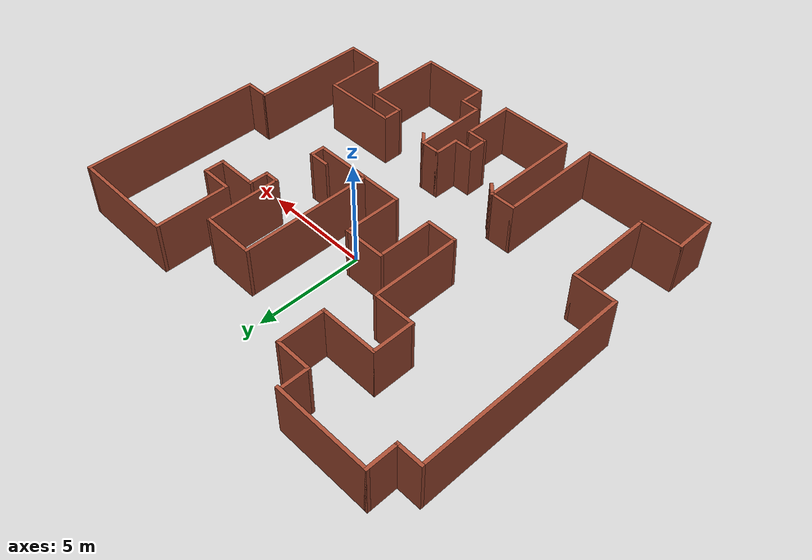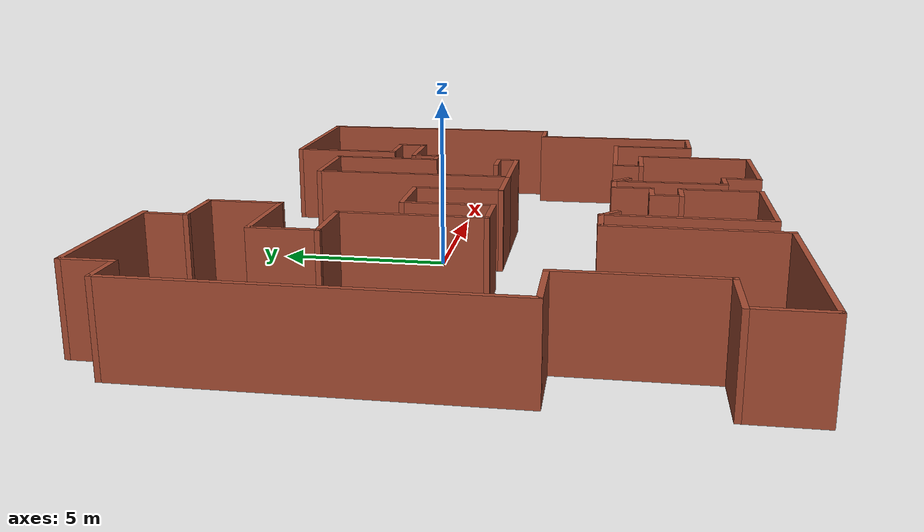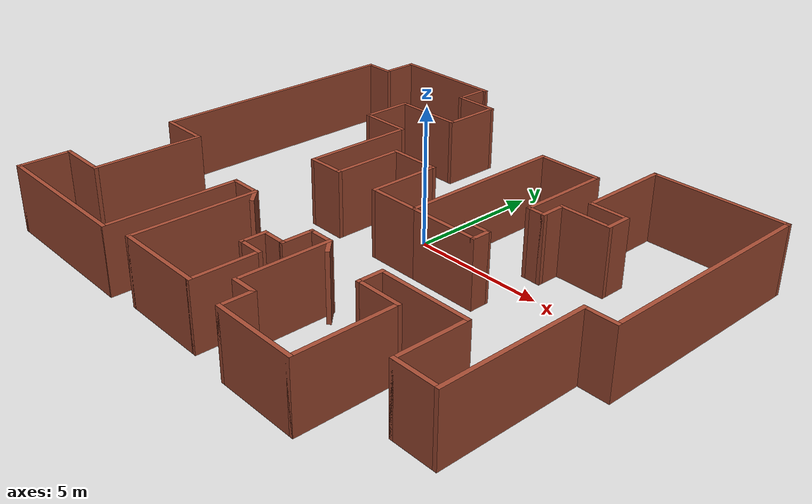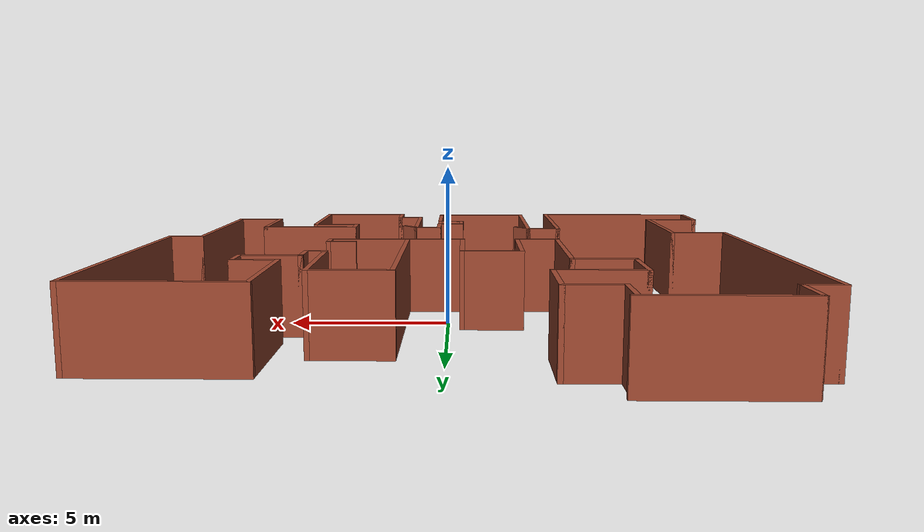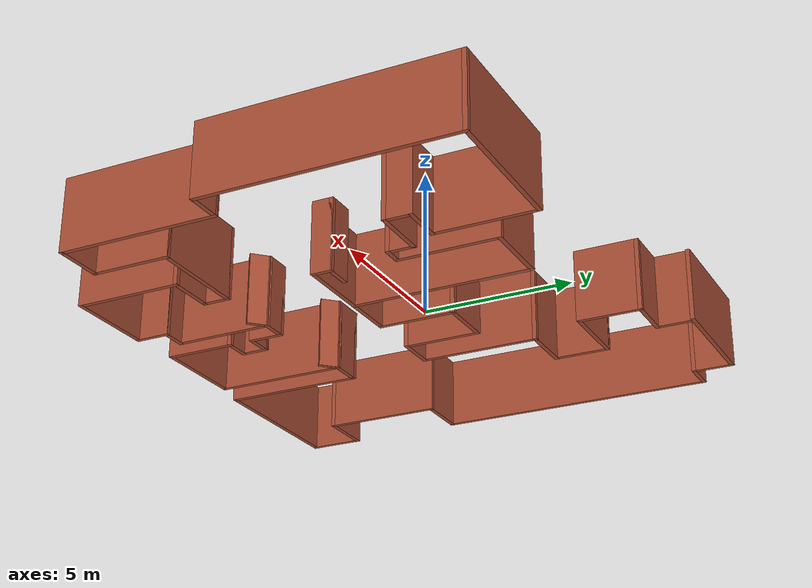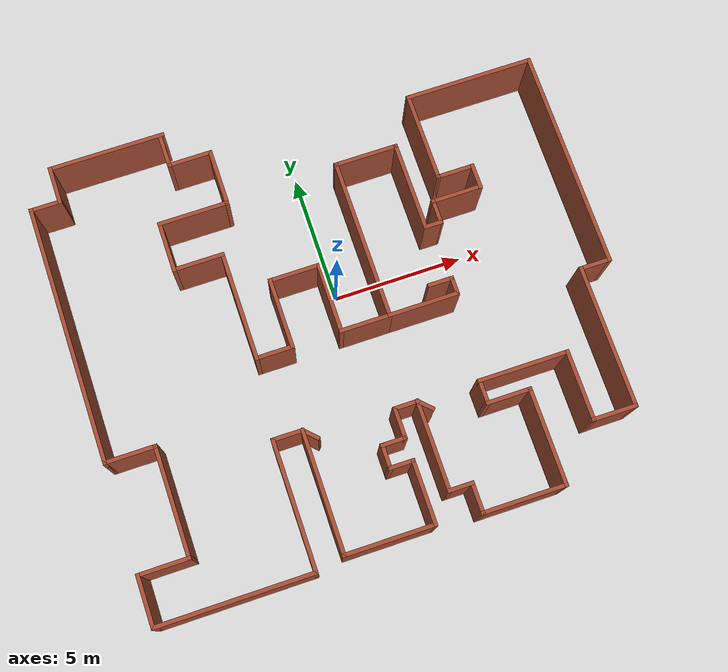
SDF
<?xml version='1.0'?>
<sdf version='1.6'>
  <model name='map_104'>
    <pose frame=''>-0.065373 -1.10854 0 0 -0 0</pose>
    <link name='Wall_14'>
      <collision name='Wall_14_Collision'>
        <geometry>
          <box>
            <size>1.5 0.15 2.5</size>
          </box>
        </geometry>
        <pose frame=''>0 0 1.25 0 -0 0</pose>
      </collision>
      <visual name='Wall_14_Visual'>
        <pose frame=''>0 0 1.25 0 -0 0</pose>
        <geometry>
          <box>
            <size>1.5 0.15 2.5</size>
          </box>
        </geometry>
        <material>
          <script>
            <uri>file://media/materials/scripts/gazebo.material</uri>
            <name>Gazebo/Bricks</name>
          </script>
          <ambient>1 1 1 1</ambient>
        </material>
        <meta>
          <layer>0</layer>
        </meta>
      </visual>
      <pose frame=''>-8.675 7.9 0 0 -0 -1.5708</pose>
    </link>
    <link name='Wall_15'>
      <collision name='Wall_15_Collision'>
        <geometry>
          <box>
            <size>1.25 0.15 2.5</size>
          </box>
        </geometry>
        <pose frame=''>0 0 1.25 0 -0 0</pose>
      </collision>
      <visual name='Wall_15_Visual'>
        <pose frame=''>0 0 1.25 0 -0 0</pose>
        <geometry>
          <box>
            <size>1.25 0.15 2.5</size>
          </box>
        </geometry>
        <material>
          <script>
            <uri>file://media/materials/scripts/gazebo.material</uri>
            <name>Gazebo/Bricks</name>
          </script>
          <ambient>1 1 1 1</ambient>
        </material>
        <meta>
          <layer>0</layer>
        </meta>
      </visual>
      <pose frame=''>-9.225 7.225 0 0 -0 3.14159</pose>
    </link>
    <link name='Wall_17'>
      <collision name='Wall_17_Collision'>
        <geometry>
          <box>
            <size>10 0.15 2.5</size>
          </box>
        </geometry>
        <pose frame=''>0 0 1.25 0 -0 0</pose>
      </collision>
      <visual name='Wall_17_Visual'>
        <pose frame=''>0 0 1.25 0 -0 0</pose>
        <geometry>
          <box>
            <size>10 0.15 2.5</size>
          </box>
        </geometry>
        <material>
          <script>
            <uri>file://media/materials/scripts/gazebo.material</uri>
            <name>Gazebo/Bricks</name>
          </script>
          <ambient>1 1 1 1</ambient>
        </material>
        <meta>
          <layer>0</layer>
        </meta>
      </visual>
      <pose frame=''>-9.775 2.3 0 0 -0 -1.5708</pose>
    </link>
    <link name='Wall_18'>
      <collision name='Wall_18_Collision'>
        <geometry>
          <box>
            <size>2 0.15 2.5</size>
          </box>
        </geometry>
        <pose frame=''>0 0 1.25 0 -0 0</pose>
      </collision>
      <visual name='Wall_18_Visual'>
        <pose frame=''>0 0 1.25 0 -0 0</pose>
        <geometry>
          <box>
            <size>2 0.15 2.5</size>
          </box>
        </geometry>
        <material>
          <script>
            <uri>file://media/materials/scripts/gazebo.material</uri>
            <name>Gazebo/Bricks</name>
          </script>
          <ambient>1 1 1 1</ambient>
        </material>
        <meta>
          <layer>0</layer>
        </meta>
      </visual>
      <pose frame=''>-8.85 -2.625 0 0 -0 0</pose>
    </link>
    <link name='Wall_19'>
      <collision name='Wall_19_Collision'>
        <geometry>
          <box>
            <size>4.25 0.15 2.5</size>
          </box>
        </geometry>
        <pose frame=''>0 0 1.25 0 -0 0</pose>
      </collision>
      <visual name='Wall_19_Visual'>
        <pose frame=''>0 0 1.25 0 -0 0</pose>
        <geometry>
          <box>
            <size>4.25 0.15 2.5</size>
          </box>
        </geometry>
        <material>
          <script>
            <uri>file://media/materials/scripts/gazebo.material</uri>
            <name>Gazebo/Bricks</name>
          </script>
          <ambient>1 1 1 1</ambient>
        </material>
        <meta>
          <layer>0</layer>
        </meta>
      </visual>
      <pose frame=''>-7.925 -4.675 0 0 -0 -1.5708</pose>
    </link>
    <link name='Wall_20'>
      <collision name='Wall_20_Collision'>
        <geometry>
          <box>
            <size>2 0.15 2.5</size>
          </box>
        </geometry>
        <pose frame=''>0 0 1.25 0 -0 0</pose>
      </collision>
      <visual name='Wall_20_Visual'>
        <pose frame=''>0 0 1.25 0 -0 0</pose>
        <geometry>
          <box>
            <size>2 0.15 2.5</size>
          </box>
        </geometry>
        <material>
          <script>
            <uri>file://media/materials/scripts/gazebo.material</uri>
            <name>Gazebo/Bricks</name>
          </script>
          <ambient>1 1 1 1</ambient>
        </material>
        <meta>
          <layer>0</layer>
        </meta>
      </visual>
      <pose frame=''>-8.85 -6.725 0 0 -0 3.14159</pose>
    </link>
    <link name='Wall_21'>
      <collision name='Wall_21_Collision'>
        <geometry>
          <box>
            <size>2 0.15 2.5</size>
          </box>
        </geometry>
        <pose frame=''>0 0 1.25 0 -0 0</pose>
      </collision>
      <visual name='Wall_21_Visual'>
        <pose frame=''>0 0 1.25 0 -0 0</pose>
        <geometry>
          <box>
            <size>2 0.15 2.5</size>
          </box>
        </geometry>
        <material>
          <script>
            <uri>file://media/materials/scripts/gazebo.material</uri>
            <name>Gazebo/Bricks</name>
          </script>
          <ambient>1 1 1 1</ambient>
        </material>
        <meta>
          <layer>0</layer>
        </meta>
      </visual>
      <pose frame=''>-9.775 -7.65 0 0 -0 -1.5708</pose>
    </link>
    <link name='Wall_22'>
      <collision name='Wall_22_Collision'>
        <geometry>
          <box>
            <size>6 0.15 2.5</size>
          </box>
        </geometry>
        <pose frame=''>0 0 1.25 0 -0 0</pose>
      </collision>
      <visual name='Wall_22_Visual'>
        <pose frame=''>0 0 1.25 0 -0 0</pose>
        <geometry>
          <box>
            <size>6 0.15 2.5</size>
          </box>
        </geometry>
        <material>
          <script>
            <uri>file://media/materials/scripts/gazebo.material</uri>
            <name>Gazebo/Bricks</name>
          </script>
          <ambient>1 1 1 1</ambient>
        </material>
        <meta>
          <layer>0</layer>
        </meta>
      </visual>
      <pose frame=''>-6.85 -8.575 0 0 -0 0</pose>
    </link>
    <link name='Wall_23'>
      <collision name='Wall_23_Collision'>
        <geometry>
          <box>
            <size>5 0.15 2.5</size>
          </box>
        </geometry>
        <pose frame=''>0 0 1.25 0 -0 0</pose>
      </collision>
      <visual name='Wall_23_Visual'>
        <pose frame=''>0 0 1.25 0 -0 0</pose>
        <geometry>
          <box>
            <size>5 0.15 2.5</size>
          </box>
        </geometry>
        <material>
          <script>
            <uri>file://media/materials/scripts/gazebo.material</uri>
            <name>Gazebo/Bricks</name>
          </script>
          <ambient>1 1 1 1</ambient>
        </material>
        <meta>
          <layer>0</layer>
        </meta>
      </visual>
      <pose frame=''>-3.925 -6.15 0 0 -0 1.5708</pose>
    </link>
    <link name='Wall_24'>
      <collision name='Wall_24_Collision'>
        <geometry>
          <box>
            <size>1.25 0.15 2.5</size>
          </box>
        </geometry>
        <pose frame=''>0 0 1.25 0 -0 0</pose>
      </collision>
      <visual name='Wall_24_Visual'>
        <pose frame=''>0 0 1.25 0 -0 0</pose>
        <geometry>
          <box>
            <size>1.25 0.15 2.5</size>
          </box>
        </geometry>
        <material>
          <script>
            <uri>file://media/materials/scripts/gazebo.material</uri>
            <name>Gazebo/Bricks</name>
          </script>
          <ambient>1 1 1 1</ambient>
        </material>
        <meta>
          <layer>0</layer>
        </meta>
      </visual>
      <pose frame=''>-3.375 -3.725 0 0 -0 0</pose>
    </link>
    <link name='Wall_25'>
      <collision name='Wall_25_Collision'>
        <geometry>
          <box>
            <size>4.75 0.15 2.5</size>
          </box>
        </geometry>
        <pose frame=''>0 0 1.25 0 -0 0</pose>
      </collision>
      <visual name='Wall_25_Visual'>
        <pose frame=''>0 0 1.25 0 -0 0</pose>
        <geometry>
          <box>
            <size>4.75 0.15 2.5</size>
          </box>
        </geometry>
        <material>
          <script>
            <uri>file://media/materials/scripts/gazebo.material</uri>
            <name>Gazebo/Bricks</name>
          </script>
          <ambient>1 1 1 1</ambient>
        </material>
        <meta>
          <layer>0</layer>
        </meta>
      </visual>
      <pose frame=''>-2.825 -6.025 0 0 -0 -1.5708</pose>
    </link>
    <link name='Wall_26'>
      <collision name='Wall_26_Collision'>
        <geometry>
          <box>
            <size>3.5 0.15 2.5</size>
          </box>
        </geometry>
        <pose frame=''>0 0 1.25 0 -0 0</pose>
      </collision>
      <visual name='Wall_26_Visual'>
        <pose frame=''>0 0 1.25 0 -0 0</pose>
        <geometry>
          <box>
            <size>3.5 0.15 2.5</size>
          </box>
        </geometry>
        <material>
          <script>
            <uri>file://media/materials/scripts/gazebo.material</uri>
            <name>Gazebo/Bricks</name>
          </script>
          <ambient>1 1 1 1</ambient>
        </material>
        <meta>
          <layer>0</layer>
        </meta>
      </visual>
      <pose frame=''>-1.15 -8.325 0 0 -0 0</pose>
    </link>
    <link name='Wall_27'>
      <collision name='Wall_27_Collision'>
        <geometry>
          <box>
            <size>2.5 0.15 2.5</size>
          </box>
        </geometry>
        <pose frame=''>0 0 1.25 0 -0 0</pose>
      </collision>
      <visual name='Wall_27_Visual'>
        <pose frame=''>0 0 1.25 0 -0 0</pose>
        <geometry>
          <box>
            <size>2.5 0.15 2.5</size>
          </box>
        </geometry>
        <material>
          <script>
            <uri>file://media/materials/scripts/gazebo.material</uri>
            <name>Gazebo/Bricks</name>
          </script>
          <ambient>1 1 1 1</ambient>
        </material>
        <meta>
          <layer>0</layer>
        </meta>
      </visual>
      <pose frame=''>0.525 -7.15 0 0 -0 1.5708</pose>
    </link>
    <link name='Wall_28'>
      <collision name='Wall_28_Collision'>
        <geometry>
          <box>
            <size>1 0.15 2.5</size>
          </box>
        </geometry>
        <pose frame=''>0 0 1.25 0 -0 0</pose>
      </collision>
      <visual name='Wall_28_Visual'>
        <pose frame=''>0 0 1.25 0 -0 0</pose>
        <geometry>
          <box>
            <size>1 0.15 2.5</size>
          </box>
        </geometry>
        <material>
          <script>
            <uri>file://media/materials/scripts/gazebo.material</uri>
            <name>Gazebo/Bricks</name>
          </script>
          <ambient>1 1 1 1</ambient>
        </material>
        <meta>
          <layer>0</layer>
        </meta>
      </visual>
      <pose frame=''>0.1 -5.975 0 0 -0 3.14159</pose>
    </link>
    <link name='Wall_29'>
      <collision name='Wall_29_Collision'>
        <geometry>
          <box>
            <size>1 0.15 2.5</size>
          </box>
        </geometry>
        <pose frame=''>0 0 1.25 0 -0 0</pose>
      </collision>
      <visual name='Wall_29_Visual'>
        <pose frame=''>0 0 1.25 0 -0 0</pose>
        <geometry>
          <box>
            <size>1 0.15 2.5</size>
          </box>
        </geometry>
        <material>
          <script>
            <uri>file://media/materials/scripts/gazebo.material</uri>
            <name>Gazebo/Bricks</name>
          </script>
          <ambient>1 1 1 1</ambient>
        </material>
        <meta>
          <layer>0</layer>
        </meta>
      </visual>
      <pose frame=''>-0.325 -5.55 0 0 -0 1.5708</pose>
    </link>
    <link name='Wall_30'>
      <collision name='Wall_30_Collision'>
        <geometry>
          <box>
            <size>1 0.15 2.5</size>
          </box>
        </geometry>
        <pose frame=''>0 0 1.25 0 -0 0</pose>
      </collision>
      <visual name='Wall_30_Visual'>
        <pose frame=''>0 0 1.25 0 -0 0</pose>
        <geometry>
          <box>
            <size>1 0.15 2.5</size>
          </box>
        </geometry>
        <material>
          <script>
            <uri>file://media/materials/scripts/gazebo.material</uri>
            <name>Gazebo/Bricks</name>
          </script>
          <ambient>1 1 1 1</ambient>
        </material>
        <meta>
          <layer>0</layer>
        </meta>
      </visual>
      <pose frame=''>0.1 -5.125 0 0 -0 0</pose>
    </link>
    <link name='Wall_31'>
      <collision name='Wall_31_Collision'>
        <geometry>
          <box>
            <size>1.25 0.15 2.5</size>
          </box>
        </geometry>
        <pose frame=''>0 0 1.25 0 -0 0</pose>
      </collision>
      <visual name='Wall_31_Visual'>
        <pose frame=''>0 0 1.25 0 -0 0</pose>
        <geometry>
          <box>
            <size>1.25 0.15 2.5</size>
          </box>
        </geometry>
        <material>
          <script>
            <uri>file://media/materials/scripts/gazebo.material</uri>
            <name>Gazebo/Bricks</name>
          </script>
          <ambient>1 1 1 1</ambient>
        </material>
        <meta>
          <layer>0</layer>
        </meta>
      </visual>
      <pose frame=''>0.525 -4.575 0 0 -0 1.5708</pose>
    </link>
    <link name='Wall_32'>
      <collision name='Wall_32_Collision'>
        <geometry>
          <box>
            <size>1 0.15 2.5</size>
          </box>
        </geometry>
        <pose frame=''>0 0 1.25 0 -0 0</pose>
      </collision>
      <visual name='Wall_32_Visual'>
        <pose frame=''>0 0 1.25 0 -0 0</pose>
        <geometry>
          <box>
            <size>1 0.15 2.5</size>
          </box>
        </geometry>
        <material>
          <script>
            <uri>file://media/materials/scripts/gazebo.material</uri>
            <name>Gazebo/Bricks</name>
          </script>
          <ambient>1 1 1 1</ambient>
        </material>
        <meta>
          <layer>0</layer>
        </meta>
      </visual>
      <pose frame=''>0.95 -4.025 0 0 -0 0</pose>
    </link>
    <link name='Wall_33'>
      <collision name='Wall_33_Collision'>
        <geometry>
          <box>
            <size>3.5 0.15 2.5</size>
          </box>
        </geometry>
        <pose frame=''>0 0 1.25 0 -0 0</pose>
      </collision>
      <visual name='Wall_33_Visual'>
        <pose frame=''>0 0 1.25 0 -0 0</pose>
        <geometry>
          <box>
            <size>3.5 0.15 2.5</size>
          </box>
        </geometry>
        <material>
          <script>
            <uri>file://media/materials/scripts/gazebo.material</uri>
            <name>Gazebo/Bricks</name>
          </script>
          <ambient>1 1 1 1</ambient>
        </material>
        <meta>
          <layer>0</layer>
        </meta>
      </visual>
      <pose frame=''>1.375 -5.7 0 0 -0 -1.5708</pose>
    </link>
    <link name='Wall_34'>
      <collision name='Wall_34_Collision'>
        <geometry>
          <box>
            <size>1 0.15 2.5</size>
          </box>
        </geometry>
        <pose frame=''>0 0 1.25 0 -0 0</pose>
      </collision>
      <visual name='Wall_34_Visual'>
        <pose frame=''>0 0 1.25 0 -0 0</pose>
        <geometry>
          <box>
            <size>1 0.15 2.5</size>
          </box>
        </geometry>
        <material>
          <script>
            <uri>file://media/materials/scripts/gazebo.material</uri>
            <name>Gazebo/Bricks</name>
          </script>
          <ambient>1 1 1 1</ambient>
        </material>
        <meta>
          <layer>0</layer>
        </meta>
      </visual>
      <pose frame=''>1.8 -7.375 0 0 -0 0</pose>
    </link>
    <link name='Wall_35'>
      <collision name='Wall_35_Collision'>
        <geometry>
          <box>
            <size>1.25 0.15 2.5</size>
          </box>
        </geometry>
        <pose frame=''>0 0 1.25 0 -0 0</pose>
      </collision>
      <visual name='Wall_35_Visual'>
        <pose frame=''>0 0 1.25 0 -0 0</pose>
        <geometry>
          <box>
            <size>1.25 0.15 2.5</size>
          </box>
        </geometry>
        <material>
          <script>
            <uri>file://media/materials/scripts/gazebo.material</uri>
            <name>Gazebo/Bricks</name>
          </script>
          <ambient>1 1 1 1</ambient>
        </material>
        <meta>
          <layer>0</layer>
        </meta>
      </visual>
      <pose frame=''>2.225 -7.925 0 0 -0 -1.5708</pose>
    </link>
    <link name='Wall_36'>
      <collision name='Wall_36_Collision'>
        <geometry>
          <box>
            <size>3.25 0.15 2.5</size>
          </box>
        </geometry>
        <pose frame=''>0 0 1.25 0 -0 0</pose>
      </collision>
      <visual name='Wall_36_Visual'>
        <pose frame=''>0 0 1.25 0 -0 0</pose>
        <geometry>
          <box>
            <size>3.25 0.15 2.5</size>
          </box>
        </geometry>
        <material>
          <script>
            <uri>file://media/materials/scripts/gazebo.material</uri>
            <name>Gazebo/Bricks</name>
          </script>
          <ambient>1 1 1 1</ambient>
        </material>
        <meta>
          <layer>0</layer>
        </meta>
      </visual>
      <pose frame=''>3.775 -8.475 0 0 -0 0</pose>
    </link>
    <link name='Wall_37'>
      <collision name='Wall_37_Collision'>
        <geometry>
          <box>
            <size>3.75 0.15 2.5</size>
          </box>
        </geometry>
        <pose frame=''>0 0 1.25 0 -0 0</pose>
      </collision>
      <visual name='Wall_37_Visual'>
        <pose frame=''>0 0 1.25 0 -0 0</pose>
        <geometry>
          <box>
            <size>3.75 0.15 2.5</size>
          </box>
        </geometry>
        <material>
          <script>
            <uri>file://media/materials/scripts/gazebo.material</uri>
            <name>Gazebo/Bricks</name>
          </script>
          <ambient>1 1 1 1</ambient>
        </material>
        <meta>
          <layer>0</layer>
        </meta>
      </visual>
      <pose frame=''>5.325 -6.675 0 0 -0 1.5708</pose>
    </link>
    <link name='Wall_38'>
      <collision name='Wall_38_Collision'>
        <geometry>
          <box>
            <size>1.75 0.15 2.5</size>
          </box>
        </geometry>
        <pose frame=''>0 0 1.25 0 -0 0</pose>
      </collision>
      <visual name='Wall_38_Visual'>
        <pose frame=''>0 0 1.25 0 -0 0</pose>
        <geometry>
          <box>
            <size>1.75 0.15 2.5</size>
          </box>
        </geometry>
        <material>
          <script>
            <uri>file://media/materials/scripts/gazebo.material</uri>
            <name>Gazebo/Bricks</name>
          </script>
          <ambient>1 1 1 1</ambient>
        </material>
        <meta>
          <layer>0</layer>
        </meta>
      </visual>
      <pose frame=''>4.525 -4.875 0 0 -0 3.14159</pose>
    </link>
    <link name='Wall_39'>
      <collision name='Wall_39_Collision'>
        <geometry>
          <box>
            <size>1 0.15 2.5</size>
          </box>
        </geometry>
        <pose frame=''>0 0 1.25 0 -0 0</pose>
      </collision>
      <visual name='Wall_39_Visual'>
        <pose frame=''>0 0 1.25 0 -0 0</pose>
        <geometry>
          <box>
            <size>1 0.15 2.5</size>
          </box>
        </geometry>
        <material>
          <script>
            <uri>file://media/materials/scripts/gazebo.material</uri>
            <name>Gazebo/Bricks</name>
          </script>
          <ambient>1 1 1 1</ambient>
        </material>
        <meta>
          <layer>0</layer>
        </meta>
      </visual>
      <pose frame=''>3.725 -4.45 0 0 -0 1.5708</pose>
    </link>
    <link name='Wall_40'>
      <collision name='Wall_40_Collision'>
        <geometry>
          <box>
            <size>3.5 0.15 2.5</size>
          </box>
        </geometry>
        <pose frame=''>0 0 1.25 0 -0 0</pose>
      </collision>
      <visual name='Wall_40_Visual'>
        <pose frame=''>0 0 1.25 0 -0 0</pose>
        <geometry>
          <box>
            <size>3.5 0.15 2.5</size>
          </box>
        </geometry>
        <material>
          <script>
            <uri>file://media/materials/scripts/gazebo.material</uri>
            <name>Gazebo/Bricks</name>
          </script>
          <ambient>1 1 1 1</ambient>
        </material>
        <meta>
          <layer>0</layer>
        </meta>
      </visual>
      <pose frame=''>5.4 -4.025 0 0 -0 0</pose>
    </link>
    <link name='Wall_41'>
      <collision name='Wall_41_Collision'>
        <geometry>
          <box>
            <size>2.75 0.15 2.5</size>
          </box>
        </geometry>
        <pose frame=''>0 0 1.25 0 -0 0</pose>
      </collision>
      <visual name='Wall_41_Visual'>
        <pose frame=''>0 0 1.25 0 -0 0</pose>
        <geometry>
          <box>
            <size>2.75 0.15 2.5</size>
          </box>
        </geometry>
        <material>
          <script>
            <uri>file://media/materials/scripts/gazebo.material</uri>
            <name>Gazebo/Bricks</name>
          </script>
          <ambient>1 1 1 1</ambient>
        </material>
        <meta>
          <layer>0</layer>
        </meta>
      </visual>
      <pose frame=''>7.075 -5.325 0 0 -0 -1.5708</pose>
    </link>
    <link name='Wall_42'>
      <collision name='Wall_42_Collision'>
        <geometry>
          <box>
            <size>1.75 0.15 2.5</size>
          </box>
        </geometry>
        <pose frame=''>0 0 1.25 0 -0 0</pose>
      </collision>
      <visual name='Wall_42_Visual'>
        <pose frame=''>0 0 1.25 0 -0 0</pose>
        <geometry>
          <box>
            <size>1.75 0.15 2.5</size>
          </box>
        </geometry>
        <material>
          <script>
            <uri>file://media/materials/scripts/gazebo.material</uri>
            <name>Gazebo/Bricks</name>
          </script>
          <ambient>1 1 1 1</ambient>
        </material>
        <meta>
          <layer>0</layer>
        </meta>
      </visual>
      <pose frame=''>7.875 -6.625 0 0 -0 0</pose>
    </link>
    <link name='Wall_43'>
      <collision name='Wall_43_Collision'>
        <geometry>
          <box>
            <size>5.5 0.15 2.5</size>
          </box>
        </geometry>
        <pose frame=''>0 0 1.25 0 -0 0</pose>
      </collision>
      <visual name='Wall_43_Visual'>
        <pose frame=''>0 0 1.25 0 -0 0</pose>
        <geometry>
          <box>
            <size>5.5 0.15 2.5</size>
          </box>
        </geometry>
        <material>
          <script>
            <uri>file://media/materials/scripts/gazebo.material</uri>
            <name>Gazebo/Bricks</name>
          </script>
          <ambient>1 1 1 1</ambient>
        </material>
        <meta>
          <layer>0</layer>
        </meta>
      </visual>
      <pose frame=''>8.675 -3.95 0 0 -0 1.5708</pose>
    </link>
    <link name='Wall_45'>
      <collision name='Wall_45_Collision'>
        <geometry>
          <box>
            <size>1.25 0.15 2.5</size>
          </box>
        </geometry>
        <pose frame=''>0 0 1.25 0 -0 0</pose>
      </collision>
      <visual name='Wall_45_Visual'>
        <pose frame=''>0 0 1.25 0 -0 0</pose>
        <geometry>
          <box>
            <size>1.25 0.15 2.5</size>
          </box>
        </geometry>
        <material>
          <script>
            <uri>file://media/materials/scripts/gazebo.material</uri>
            <name>Gazebo/Bricks</name>
          </script>
          <ambient>1 1 1 1</ambient>
        </material>
        <meta>
          <layer>0</layer>
        </meta>
      </visual>
      <pose frame=''>9.225 -1.275 0 0 -0 0</pose>
    </link>
    <link name='Wall_47'>
      <collision name='Wall_47_Collision'>
        <geometry>
          <box>
            <size>8.5 0.15 2.5</size>
          </box>
        </geometry>
        <pose frame=''>0 0 1.25 0 -0 0</pose>
      </collision>
      <visual name='Wall_47_Visual'>
        <pose frame=''>0 0 1.25 0 -0 0</pose>
        <geometry>
          <box>
            <size>8.5 0.15 2.5</size>
          </box>
        </geometry>
        <material>
          <script>
            <uri>file://media/materials/scripts/gazebo.material</uri>
            <name>Gazebo/Bricks</name>
          </script>
          <ambient>1 1 1 1</ambient>
        </material>
        <meta>
          <layer>0</layer>
        </meta>
      </visual>
      <pose frame=''>9.775 2.9 0 0 -0 1.5708</pose>
    </link>
    <link name='Wall_48'>
      <collision name='Wall_48_Collision'>
        <geometry>
          <box>
            <size>5 0.15 2.5</size>
          </box>
        </geometry>
        <pose frame=''>0 0 1.25 0 -0 0</pose>
      </collision>
      <visual name='Wall_48_Visual'>
        <pose frame=''>0 0 1.25 0 -0 0</pose>
        <geometry>
          <box>
            <size>5 0.15 2.5</size>
          </box>
        </geometry>
        <material>
          <script>
            <uri>file://media/materials/scripts/gazebo.material</uri>
            <name>Gazebo/Bricks</name>
          </script>
          <ambient>1 1 1 1</ambient>
        </material>
        <meta>
          <layer>0</layer>
        </meta>
      </visual>
      <pose frame=''>7.35 7.075 0 0 -0 3.14159</pose>
    </link>
    <link name='Wall_49'>
      <collision name='Wall_49_Collision'>
        <geometry>
          <box>
            <size>3.5 0.15 2.5</size>
          </box>
        </geometry>
        <pose frame=''>0 0 1.25 0 -0 0</pose>
      </collision>
      <visual name='Wall_49_Visual'>
        <pose frame=''>0 0 1.25 0 -0 0</pose>
        <geometry>
          <box>
            <size>3.5 0.15 2.5</size>
          </box>
        </geometry>
        <material>
          <script>
            <uri>file://media/materials/scripts/gazebo.material</uri>
            <name>Gazebo/Bricks</name>
          </script>
          <ambient>1 1 1 1</ambient>
        </material>
        <meta>
          <layer>0</layer>
        </meta>
      </visual>
      <pose frame=''>4.925 5.4 0 0 -0 -1.5708</pose>
    </link>
    <link name='Wall_50'>
      <collision name='Wall_50_Collision'>
        <geometry>
          <box>
            <size>1.5 0.15 2.5</size>
          </box>
        </geometry>
        <pose frame=''>0 0 1.25 0 -0 0</pose>
      </collision>
      <visual name='Wall_50_Visual'>
        <pose frame=''>0 0 1.25 0 -0 0</pose>
        <geometry>
          <box>
            <size>1.5 0.15 2.5</size>
          </box>
        </geometry>
        <material>
          <script>
            <uri>file://media/materials/scripts/gazebo.material</uri>
            <name>Gazebo/Bricks</name>
          </script>
          <ambient>1 1 1 1</ambient>
        </material>
        <meta>
          <layer>0</layer>
        </meta>
      </visual>
      <pose frame=''>5.6 3.725 0 0 -0 0</pose>
    </link>
    <link name='Wall_51'>
      <collision name='Wall_51_Collision'>
        <geometry>
          <box>
            <size>1 0.15 2.5</size>
          </box>
        </geometry>
        <pose frame=''>0 0 1.25 0 -0 0</pose>
      </collision>
      <visual name='Wall_51_Visual'>
        <pose frame=''>0 0 1.25 0 -0 0</pose>
        <geometry>
          <box>
            <size>1 0.15 2.5</size>
          </box>
        </geometry>
        <material>
          <script>
            <uri>file://media/materials/scripts/gazebo.material</uri>
            <name>Gazebo/Bricks</name>
          </script>
          <ambient>1 1 1 1</ambient>
        </material>
        <meta>
          <layer>0</layer>
        </meta>
      </visual>
      <pose frame=''>6.275 3.3 0 0 -0 -1.5708</pose>
    </link>
    <link name='Wall_52'>
      <collision name='Wall_52_Collision'>
        <geometry>
          <box>
            <size>2 0.15 2.5</size>
          </box>
        </geometry>
        <pose frame=''>0 0 1.25 0 -0 0</pose>
      </collision>
      <visual name='Wall_52_Visual'>
        <pose frame=''>0 0 1.25 0 -0 0</pose>
        <geometry>
          <box>
            <size>2 0.15 2.5</size>
          </box>
        </geometry>
        <material>
          <script>
            <uri>file://media/materials/scripts/gazebo.material</uri>
            <name>Gazebo/Bricks</name>
          </script>
          <ambient>1 1 1 1</ambient>
        </material>
        <meta>
          <layer>0</layer>
        </meta>
      </visual>
      <pose frame=''>5.35 2.875 0 0 -0 3.14159</pose>
    </link>
    <link name='Wall_62'>
      <collision name='Wall_62_Collision'>
        <geometry>
          <box>
            <size>2.5 0.15 2.5</size>
          </box>
        </geometry>
        <pose frame=''>0 0 1.25 0 -0 0</pose>
      </collision>
      <visual name='Wall_62_Visual'>
        <pose frame=''>0 0 1.25 0 -0 0</pose>
        <geometry>
          <box>
            <size>2.5 0.15 2.5</size>
          </box>
        </geometry>
        <material>
          <script>
            <uri>file://media/materials/scripts/gazebo.material</uri>
            <name>Gazebo/Bricks</name>
          </script>
          <ambient>1 1 1 1</ambient>
        </material>
        <meta>
          <layer>0</layer>
        </meta>
      </visual>
      <pose frame=''>2.65 5.375 0 0 -0 3.14159</pose>
    </link>
    <link name='Wall_63'>
      <collision name='Wall_63_Collision'>
        <geometry>
          <box>
            <size>6.25 0.15 2.5</size>
          </box>
        </geometry>
        <pose frame=''>0 0 1.25 0 -0 0</pose>
      </collision>
      <visual name='Wall_63_Visual'>
        <pose frame=''>0 0 1.25 0 -0 0</pose>
        <geometry>
          <box>
            <size>6.25 0.15 2.5</size>
          </box>
        </geometry>
        <material>
          <script>
            <uri>file://media/materials/scripts/gazebo.material</uri>
            <name>Gazebo/Bricks</name>
          </script>
          <ambient>1 1 1 1</ambient>
        </material>
        <meta>
          <layer>0</layer>
        </meta>
      </visual>
      <pose frame=''>1.475 2.325 0 0 -0 -1.5708</pose>
    </link>
    <link name='Wall_64'>
      <collision name='Wall_64_Collision'>
        <geometry>
          <box>
            <size>2.75 0.15 2.5</size>
          </box>
        </geometry>
        <pose frame=''>0 0 1.25 0 -0 0</pose>
      </collision>
      <visual name='Wall_64_Visual'>
        <pose frame=''>0 0 1.25 0 -0 0</pose>
        <geometry>
          <box>
            <size>2.75 0.15 2.5</size>
          </box>
        </geometry>
        <material>
          <script>
            <uri>file://media/materials/scripts/gazebo.material</uri>
            <name>Gazebo/Bricks</name>
          </script>
          <ambient>1 1 1 1</ambient>
        </material>
        <meta>
          <layer>0</layer>
        </meta>
      </visual>
      <pose frame=''>2.775 -0.725 0 0 -0 0</pose>
    </link>
    <link name='Wall_65'>
      <collision name='Wall_65_Collision'>
        <geometry>
          <box>
            <size>0.75 0.15 2.5</size>
          </box>
        </geometry>
        <pose frame=''>0 0 1.25 0 -0 0</pose>
      </collision>
      <visual name='Wall_65_Visual'>
        <pose frame=''>0 0 1.25 0 -0 0</pose>
        <geometry>
          <box>
            <size>0.75 0.15 2.5</size>
          </box>
        </geometry>
        <material>
          <script>
            <uri>file://media/materials/scripts/gazebo.material</uri>
            <name>Gazebo/Bricks</name>
          </script>
          <ambient>1 1 1 1</ambient>
        </material>
        <meta>
          <layer>0</layer>
        </meta>
      </visual>
      <pose frame=''>4.075 -0.425 0 0 -0 1.5708</pose>
    </link>
    <link name='Wall_66'>
      <collision name='Wall_66_Collision'>
        <geometry>
          <box>
            <size>1 0.15 2.5</size>
          </box>
        </geometry>
        <pose frame=''>0 0 1.25 0 -0 0</pose>
      </collision>
      <visual name='Wall_66_Visual'>
        <pose frame=''>0 0 1.25 0 -0 0</pose>
        <geometry>
          <box>
            <size>1 0.15 2.5</size>
          </box>
        </geometry>
        <material>
          <script>
            <uri>file://media/materials/scripts/gazebo.material</uri>
            <name>Gazebo/Bricks</name>
          </script>
          <ambient>1 1 1 1</ambient>
        </material>
        <meta>
          <layer>0</layer>
        </meta>
      </visual>
      <pose frame=''>3.65 -0.125 0 0 -0 3.14159</pose>
    </link>
    <link name='Wall_68'>
      <collision name='Wall_68_Collision'>
        <geometry>
          <box>
            <size>1 0.15 2.5</size>
          </box>
        </geometry>
        <pose frame=''>0 0 1.25 0 -0 0</pose>
      </collision>
      <visual name='Wall_68_Visual'>
        <pose frame=''>0 0 1.25 0 -0 0</pose>
        <geometry>
          <box>
            <size>1 0.15 2.5</size>
          </box>
        </geometry>
        <material>
          <script>
            <uri>file://media/materials/scripts/gazebo.material</uri>
            <name>Gazebo/Bricks</name>
          </script>
          <ambient>1 1 1 1</ambient>
        </material>
        <meta>
          <layer>0</layer>
        </meta>
      </visual>
      <pose frame=''>4.425 2.45 0 0 -0 -1.5708</pose>
    </link>
    <link name='Wall_70'>
      <collision name='Wall_70_Collision'>
        <geometry>
          <box>
            <size>3.5 0.15 2.5</size>
          </box>
        </geometry>
        <pose frame=''>0 0 1.25 0 -0 0</pose>
      </collision>
      <visual name='Wall_70_Visual'>
        <pose frame=''>0 0 1.25 0 -0 0</pose>
        <geometry>
          <box>
            <size>3.5 0.15 2.5</size>
          </box>
        </geometry>
        <material>
          <script>
            <uri>file://media/materials/scripts/gazebo.material</uri>
            <name>Gazebo/Bricks</name>
          </script>
          <ambient>1 1 1 1</ambient>
        </material>
        <meta>
          <layer>0</layer>
        </meta>
      </visual>
      <pose frame=''>3.825 3.7 0 0 -0 -1.5708</pose>
    </link>
    <link name='Wall_71'>
      <collision name='Wall_71_Collision'>
        <geometry>
          <box>
            <size>0.75 0.15 2.5</size>
          </box>
        </geometry>
        <pose frame=''>0 0 1.25 0 -0 0</pose>
      </collision>
      <visual name='Wall_71_Visual'>
        <pose frame=''>0 0 1.25 0 -0 0</pose>
        <geometry>
          <box>
            <size>0.75 0.15 2.5</size>
          </box>
        </geometry>
        <material>
          <script>
            <uri>file://media/materials/scripts/gazebo.material</uri>
            <name>Gazebo/Bricks</name>
          </script>
          <ambient>1 1 1 1</ambient>
        </material>
        <meta>
          <layer>0</layer>
        </meta>
      </visual>
      <pose frame=''>4.125 2.025 0 0 -0 0</pose>
    </link>
    <link name='Wall_73'>
      <collision name='Wall_73_Collision'>
        <geometry>
          <box>
            <size>0.75 0.15 2.5</size>
          </box>
        </geometry>
        <pose frame=''>0 0 1.25 0 -0 0</pose>
      </collision>
      <visual name='Wall_73_Visual'>
        <pose frame=''>0 0 1.25 0 -0 0</pose>
        <geometry>
          <box>
            <size>0.75 0.15 2.5</size>
          </box>
        </geometry>
        <material>
          <script>
            <uri>file://media/materials/scripts/gazebo.material</uri>
            <name>Gazebo/Bricks</name>
          </script>
          <ambient>1 1 1 1</ambient>
        </material>
        <meta>
          <layer>0</layer>
        </meta>
      </visual>
      <pose frame=''>-2.61287 -3.93713 0 0 -0 -0.785398</pose>
    </link>
    <link name='Wall_75'>
      <collision name='Wall_75_Collision'>
        <geometry>
          <box>
            <size>0.75 0.15 2.5</size>
          </box>
        </geometry>
        <pose frame=''>0 0 1.25 0 -0 0</pose>
      </collision>
      <visual name='Wall_75_Visual'>
        <pose frame=''>0 0 1.25 0 -0 0</pose>
        <geometry>
          <box>
            <size>0.75 0.15 2.5</size>
          </box>
        </geometry>
        <material>
          <script>
            <uri>file://media/materials/scripts/gazebo.material</uri>
            <name>Gazebo/Bricks</name>
          </script>
          <ambient>1 1 1 1</ambient>
        </material>
        <meta>
          <layer>0</layer>
        </meta>
      </visual>
      <pose frame=''>1.58713 -4.23713 0 0 -0 -0.785398</pose>
    </link>
    <link name='Wall_81'>
      <collision name='Wall_81_Collision'>
        <geometry>
          <box>
            <size>2 0.15 2.5</size>
          </box>
        </geometry>
        <pose frame=''>0 0 1.25 0 -0 0</pose>
      </collision>
      <visual name='Wall_81_Visual'>
        <pose frame=''>0 0 1.25 0 -0 0</pose>
        <geometry>
          <box>
            <size>2 0.15 2.5</size>
          </box>
        </geometry>
        <material>
          <script>
            <uri>file://media/materials/scripts/gazebo.material</uri>
            <name>Gazebo/Bricks</name>
          </script>
          <ambient>1 1 1 1</ambient>
        </material>
        <meta>
          <layer>0</layer>
        </meta>
      </visual>
      <pose frame=''>0.55 -0.725 0 0 -0 3.14159</pose>
    </link>
    <link name='Wall_82'>
      <collision name='Wall_82_Collision'>
        <geometry>
          <box>
            <size>2.75 0.15 2.5</size>
          </box>
        </geometry>
        <pose frame=''>0 0 1.25 0 -0 0</pose>
      </collision>
      <visual name='Wall_82_Visual'>
        <pose frame=''>0 0 1.25 0 -0 0</pose>
        <geometry>
          <box>
            <size>2.75 0.15 2.5</size>
          </box>
        </geometry>
        <material>
          <script>
            <uri>file://media/materials/scripts/gazebo.material</uri>
            <name>Gazebo/Bricks</name>
          </script>
          <ambient>1 1 1 1</ambient>
        </material>
        <meta>
          <layer>0</layer>
        </meta>
      </visual>
      <pose frame=''>-0.375 0.575 0 0 -0 1.5708</pose>
    </link>
    <link name='Wall_83'>
      <collision name='Wall_83_Collision'>
        <geometry>
          <box>
            <size>2 0.15 2.5</size>
          </box>
        </geometry>
        <pose frame=''>0 0 1.25 0 -0 0</pose>
      </collision>
      <visual name='Wall_83_Visual'>
        <pose frame=''>0 0 1.25 0 -0 0</pose>
        <geometry>
          <box>
            <size>2 0.15 2.5</size>
          </box>
        </geometry>
        <material>
          <script>
            <uri>file://media/materials/scripts/gazebo.material</uri>
            <name>Gazebo/Bricks</name>
          </script>
          <ambient>1 1 1 1</ambient>
        </material>
        <meta>
          <layer>0</layer>
        </meta>
      </visual>
      <pose frame=''>-1.3 1.875 0 0 -0 3.14159</pose>
    </link>
    <link name='Wall_84'>
      <collision name='Wall_84_Collision'>
        <geometry>
          <box>
            <size>2.75 0.15 2.5</size>
          </box>
        </geometry>
        <pose frame=''>0 0 1.25 0 -0 0</pose>
      </collision>
      <visual name='Wall_84_Visual'>
        <pose frame=''>0 0 1.25 0 -0 0</pose>
        <geometry>
          <box>
            <size>2.75 0.15 2.5</size>
          </box>
        </geometry>
        <material>
          <script>
            <uri>file://media/materials/scripts/gazebo.material</uri>
            <name>Gazebo/Bricks</name>
          </script>
          <ambient>1 1 1 1</ambient>
        </material>
        <meta>
          <layer>0</layer>
        </meta>
      </visual>
      <pose frame=''>-2.225 0.575 0 0 -0 -1.5708</pose>
    </link>
    <link name='Wall_85'>
      <collision name='Wall_85_Collision'>
        <geometry>
          <box>
            <size>1.5 0.15 2.5</size>
          </box>
        </geometry>
        <pose frame=''>0 0 1.25 0 -0 0</pose>
      </collision>
      <visual name='Wall_85_Visual'>
        <pose frame=''>0 0 1.25 0 -0 0</pose>
        <geometry>
          <box>
            <size>1.5 0.15 2.5</size>
          </box>
        </geometry>
        <material>
          <script>
            <uri>file://media/materials/scripts/gazebo.material</uri>
            <name>Gazebo/Bricks</name>
          </script>
          <ambient>1 1 1 1</ambient>
        </material>
        <meta>
          <layer>0</layer>
        </meta>
      </visual>
      <pose frame=''>-2.9 -0.725 0 0 -0 3.14159</pose>
    </link>
    <link name='Wall_86'>
      <collision name='Wall_86_Collision'>
        <geometry>
          <box>
            <size>4.25 0.15 2.5</size>
          </box>
        </geometry>
        <pose frame=''>0 0 1.25 0 -0 0</pose>
      </collision>
      <visual name='Wall_86_Visual'>
        <pose frame=''>0 0 1.25 0 -0 0</pose>
        <geometry>
          <box>
            <size>4.25 0.15 2.5</size>
          </box>
        </geometry>
        <material>
          <script>
            <uri>file://media/materials/scripts/gazebo.material</uri>
            <name>Gazebo/Bricks</name>
          </script>
          <ambient>1 1 1 1</ambient>
        </material>
        <meta>
          <layer>0</layer>
        </meta>
      </visual>
      <pose frame=''>-3.575 1.325 0 0 -0 1.5708</pose>
    </link>
    <link name='Wall_87'>
      <collision name='Wall_87_Collision'>
        <geometry>
          <box>
            <size>2 0.15 2.5</size>
          </box>
        </geometry>
        <pose frame=''>0 0 1.25 0 -0 0</pose>
      </collision>
      <visual name='Wall_87_Visual'>
        <pose frame=''>0 0 1.25 0 -0 0</pose>
        <geometry>
          <box>
            <size>2 0.15 2.5</size>
          </box>
        </geometry>
        <material>
          <script>
            <uri>file://media/materials/scripts/gazebo.material</uri>
            <name>Gazebo/Bricks</name>
          </script>
          <ambient>1 1 1 1</ambient>
        </material>
        <meta>
          <layer>0</layer>
        </meta>
      </visual>
      <pose frame=''>-4.5 3.375 0 0 -0 3.14159</pose>
    </link>
    <link name='Wall_88'>
      <collision name='Wall_88_Collision'>
        <geometry>
          <box>
            <size>2 0.15 2.5</size>
          </box>
        </geometry>
        <pose frame=''>0 0 1.25 0 -0 0</pose>
      </collision>
      <visual name='Wall_88_Visual'>
        <pose frame=''>0 0 1.25 0 -0 0</pose>
        <geometry>
          <box>
            <size>2 0.15 2.5</size>
          </box>
        </geometry>
        <material>
          <script>
            <uri>file://media/materials/scripts/gazebo.material</uri>
            <name>Gazebo/Bricks</name>
          </script>
          <ambient>1 1 1 1</ambient>
        </material>
        <meta>
          <layer>0</layer>
        </meta>
      </visual>
      <pose frame=''>-5.425 4.3 0 0 -0 1.5708</pose>
    </link>
    <link name='Wall_89'>
      <collision name='Wall_89_Collision'>
        <geometry>
          <box>
            <size>2.75 0.15 2.5</size>
          </box>
        </geometry>
        <pose frame=''>0 0 1.25 0 -0 0</pose>
      </collision>
      <visual name='Wall_89_Visual'>
        <pose frame=''>0 0 1.25 0 -0 0</pose>
        <geometry>
          <box>
            <size>2.75 0.15 2.5</size>
          </box>
        </geometry>
        <material>
          <script>
            <uri>file://media/materials/scripts/gazebo.material</uri>
            <name>Gazebo/Bricks</name>
          </script>
          <ambient>1 1 1 1</ambient>
        </material>
        <meta>
          <layer>0</layer>
        </meta>
      </visual>
      <pose frame=''>-4.125 5.225 0 0 -0 0</pose>
    </link>
    <link name='Wall_92'>
      <collision name='Wall_92_Collision'>
        <geometry>
          <box>
            <size>2.25 0.15 2.5</size>
          </box>
        </geometry>
        <pose frame=''>0 0 1.25 0 -0 0</pose>
      </collision>
      <visual name='Wall_92_Visual'>
        <pose frame=''>0 0 1.25 0 -0 0</pose>
        <geometry>
          <box>
            <size>2.25 0.15 2.5</size>
          </box>
        </geometry>
        <material>
          <script>
            <uri>file://media/materials/scripts/gazebo.material</uri>
            <name>Gazebo/Bricks</name>
          </script>
          <ambient>1 1 1 1</ambient>
        </material>
        <meta>
          <layer>0</layer>
        </meta>
      </visual>
      <pose frame=''>-2.825 6.275 0 0 -0 1.5708</pose>
    </link>
    <link name='Wall_93'>
      <collision name='Wall_93_Collision'>
        <geometry>
          <box>
            <size>1.75 0.15 2.5</size>
          </box>
        </geometry>
        <pose frame=''>0 0 1.25 0 -0 0</pose>
      </collision>
      <visual name='Wall_93_Visual'>
        <pose frame=''>0 0 1.25 0 -0 0</pose>
        <geometry>
          <box>
            <size>1.75 0.15 2.5</size>
          </box>
        </geometry>
        <material>
          <script>
            <uri>file://media/materials/scripts/gazebo.material</uri>
            <name>Gazebo/Bricks</name>
          </script>
          <ambient>1 1 1 1</ambient>
        </material>
        <meta>
          <layer>0</layer>
        </meta>
      </visual>
      <pose frame=''>-3.625 7.325 0 0 -0 3.14159</pose>
    </link>
    <link name='Wall_94'>
      <collision name='Wall_94_Collision'>
        <geometry>
          <box>
            <size>1.25 0.15 2.5</size>
          </box>
        </geometry>
        <pose frame=''>0 0 1.25 0 -0 0</pose>
      </collision>
      <visual name='Wall_94_Visual'>
        <pose frame=''>0 0 1.25 0 -0 0</pose>
        <geometry>
          <box>
            <size>1.25 0.15 2.5</size>
          </box>
        </geometry>
        <material>
          <script>
            <uri>file://media/materials/scripts/gazebo.material</uri>
            <name>Gazebo/Bricks</name>
          </script>
          <ambient>1 1 1 1</ambient>
        </material>
        <meta>
          <layer>0</layer>
        </meta>
      </visual>
      <pose frame=''>-4.425 7.875 0 0 -0 1.5708</pose>
    </link>
    <link name='Wall_99'>
      <collision name='Wall_99_Collision'>
        <geometry>
          <box>
            <size>4.5 0.15 2.5</size>
          </box>
        </geometry>
        <pose frame=''>0 0 1.25 0 -0 0</pose>
      </collision>
      <visual name='Wall_99_Visual'>
        <pose frame=''>0 0 1.25 0 -0 0</pose>
        <geometry>
          <box>
            <size>4.5 0.15 2.5</size>
          </box>
        </geometry>
        <material>
          <script>
            <uri>file://media/materials/scripts/gazebo.material</uri>
            <name>Gazebo/Bricks</name>
          </script>
          <ambient>1 1 1 1</ambient>
        </material>
        <meta>
          <layer>0</layer>
        </meta>
      </visual>
      <pose frame=''>-6.5 8.575 0 0 -0 0</pose>
    </link>
    <static>1</static>
  </model>
</sdf>
